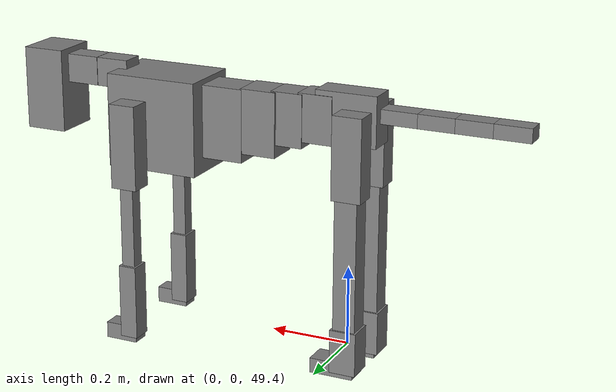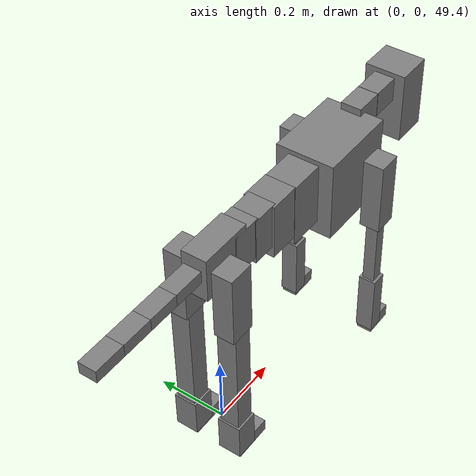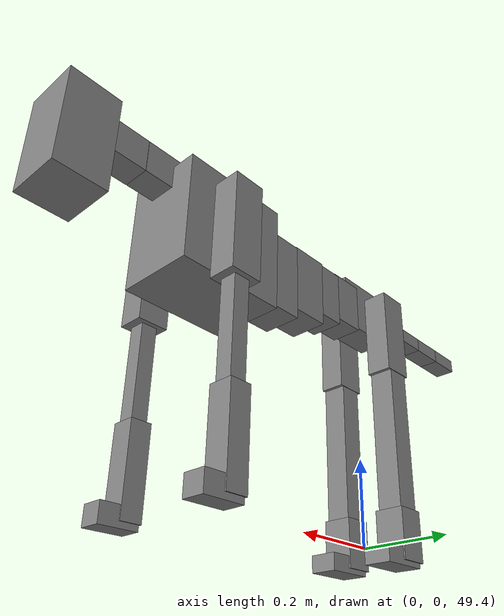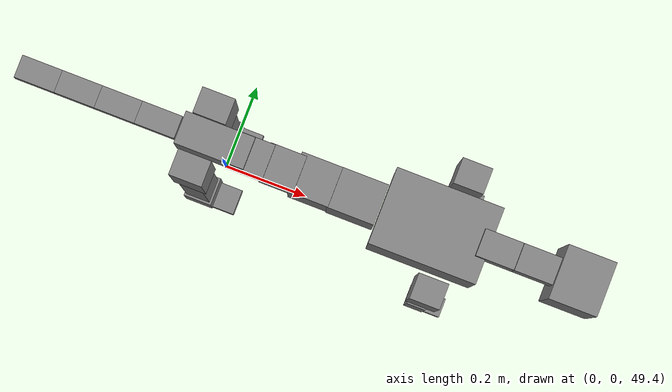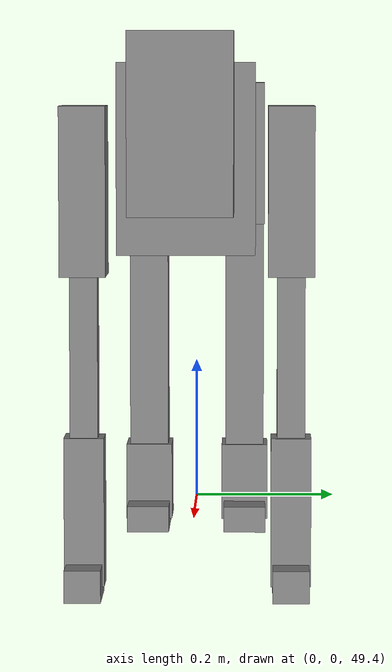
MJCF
<mujoco model="dog">

    <default>
        <joint armature="0.02" stiffness="1" damping="0.2" limited="true"/>
        <geom condim="3" friction="1 0.05 0.05" margin="0.01"/>
        <motor ctrllimited="true" ctrlrange="-1.0 1.0" forcelimited="true" gear="50"/>
    </default>

    <compiler inertiafromgeom="true" angle="radian"/>

    <option timestep="0.016" iterations="50" tolerance="1e-10" solver="Newton" jacobian="dense" cone="pyramidal"/>

    <size nconmax="20000" njmax="60000" nstack="5000000"/>
    <visual>
        <map force="0.1" zfar="30"/>
        <rgba haze="0.15 0.25 0.35 1"/>
        <quality shadowsize="2048"/>
        <global offwidth="800" offheight="800"/>
    </visual>

    <asset>
        <texture type="skybox" builtin="gradient" rgb1="0.3 0.5 0.7" rgb2="0 0 0" width="512" height="512"/>
        <texture name="texplane" type="2d" builtin="checker" rgb1=".2 .3 .4" rgb2=".1 0.15 0.2" width="512" height="512"
                 mark="cross" markrgb=".8 .8 .8"/>
        <texture name="texgeom" type="cube" builtin="flat" mark="cross" width="127" height="1278" rgb1="0.8 0.6 0.4"
                 rgb2="0.8 0.6 0.4" markrgb="1 1 1" random="0.01"/>

        <material name="matplane" reflectance="0.3" texture="texplane" texrepeat="1 1" texuniform="true"/>
        <material name="matgeom" texture="texgeom" texuniform="true" rgba="0.8 0.6 .4 1"/>
    </asset>

    <worldbody>
        <geom name="floor" pos="0 0 0" size="0 0 .25" type="plane" material="matplane" condim="3"/>

        <light directional="false" diffuse=".2 .2 .2" specular="0 0 0" pos="0 0 5" dir="0 0 -1" castshadow="false"/>
        <light mode="targetbodycom" target="torso" directional="false" diffuse=".8 .8 .8" specular="0.3 0.3 0.3"
               pos="0 0 4.0" dir="0 0 -1"/>

        <body name="root" pos="0 0 50">
            <freejoint name="root_1"/>
            <geom type="box" pos="0 0 -0.02" size="0.0774  0.0358  0.063" density="2030"/>

            <body name="spine1" pos="0.054 0 0">
                <joint name="spine1_y" axis="0 1 0" range="0 0.7" limited="true"/>
                <geom type="box" pos="0.02375 0 -0.03" size="0.04375  0.0375  0.05985" density="2030"/>

                <body name="spine2" pos="0.0612 0 0">
                    <joint name="spine2_y" axis="0 1 0" range="-0.15 0.15" limited="true"/>
                    <geom type="box" pos="0.03555  0  -0.04" size="0.04055  0.039  0.06615" density="2030"/>

                    <body name="spine3" pos="0.0730 0 0">
                        <joint name="spine3_y" axis="0 1 0" range="-0.15 0.15" limited="true"/>
                        <geom type="box" pos="0.03555  0  -0.057" size="0.04555  0.0445  0.081" density="2030"/>

                        <body name="spine4" pos="0.0780 0 0">
                            <joint name="spine4_y" axis="0 1 0" range="-0.15 0.15" limited="true"/>
                            <geom type="box" pos="0.05265  0  -0.07" size="0.05265  0.045  0.09135" density="2030"/>

                            <body name="torso" pos="0.1082 0 0">
                                <joint name="torso_y" axis="0 1 0" range="-0.15 0.15" limited="true"/>
                                <geom type="box" pos="0.11925  0  -0.085" size="0.11925  0.085  0.11745"
                                      density="2030"/>

                                <body name="neck1" pos="0.2160  0   0.0180">
                                    <joint name="neck1_y" axis="0 1 0" range="-1.2  -1" limited="true"/>
                                    <geom type="box" pos="0.0423  0  0" size="0.0423  0.03  0.036" density="2325"/>

                                    <body name="neck2" pos="0.0853  0  0">
                                        <joint name="neck2_y" axis="0 1 0" range="0.1  0" limited="true"/>
                                        <geom type="box" pos="0.0423  0  0" size="0.0423  0.03  0.036" density="2325"/>

                                        <body name="head" pos="0.0853  0  0">
                                            <joint name="head_y" axis="0 1 0" range="-0.3  -0.2" limited="true"/>
                                            <geom type="box" pos="0.0531  0  -0.055" size="0.0531  0.06  0.1044"
                                                  density="4030"/>

                                        </body>
                                    </body>
                                </body>

                                <body name="front_shoulder" pos="0.156  0   -0.0480">
                                    <joint name="front_shoulder_y" axis="0 1 0" range="-1 1.5" limited="true"/>
                                    <geom type="box" pos="0 0.13 -0.0794" size="0.0338  0.0289  0.1061" density="1158"/>
                                    <geom type="box" pos="0 -0.13 -0.0794" size="0.0338  0.0289  0.1061"
                                          density="1158"/>

                                    <body name="front_elbow" pos="0  0  -0.1588">
                                        <joint name="front_elbow_y" axis="0 1 0" range="-2 0" limited="true"/>
                                        <geom type="box" pos="0 0.13 -0.1217" size="0.0172  0.0175  0.1217"
                                              density="1081"/>
                                        <geom type="box" pos="0 -0.13 -0.1217" size="0.0172  0.0175  0.1217"
                                              density="1081"/>

                                        <body name="front_wrist" pos="0  0  -0.2433">
                                            <joint name="front_wrist_y" axis="0 1 0" range="-0.2 0" limited="true"/>
                                            <geom type="box" pos="0 0.13 -0.0810" size="0.0227  0.0252  0.0942"
                                                  density="1664"/>
                                            <geom type="box" pos="0 -0.13 -0.0810" size="0.0227  0.0252  0.0942"
                                                  density="1664"/>

                                            <body name="front_finger_end" pos="0  0  -0.1620">
                                                <joint name="front_finger_y" axis="0 1 0" range="-0.4 1"
                                                       limited="true"/>
                                                <geom type="box" pos="0.0228  0.13  -0.0054"
                                                      size="0.0417  0.0228  0.0204" density="1515"/>
                                                <geom type="box" pos="0.0228  -0.13  -0.0054"
                                                      size="0.0417  0.0228  0.0204" density="1515"/>

                                            </body>

                                        </body>
                                    </body>
                                </body>

                            </body>
                        </body>
                    </body>
                </body>
            </body>

            <body name="back_hip" pos="-0.03 0 -0.018">
                <joint name="back_hip_y" axis="0 1 0" range="-1.5 0.3" limited="true"/>
                <geom type="box" pos="0 0.07 -0.0800" size="0.0371  0.0291  0.1028" density="1154"/>
                <geom type="box" pos="0 -0.07 -0.0800" size="0.0371  0.0291  0.1028" density="1154"/>

                <body name="back_knee" pos="0  0  -0.1600">
                    <joint name="back_knee_y" axis="0 1 0" range="0 2.8" limited="true"/>
                    <geom type="box" pos="0 0.07 -0.1792" size="0.0282  0.0278  0.1948" density="1227"/>
                    <geom type="box" pos="0 -0.07 -0.1792" size="0.0282  0.0278  0.1948" density="1227"/>

                    <body name="back_ankle" pos="0  0  -0.3585">
                        <joint name="back_ankle_y" axis="0 1 0" range="-2.2 0" limited="true"/>
                        <geom type="box" pos="0 0.07 -0.0439" size="0.0333  0.0333  0.0551" density="1284"/>
                        <geom type="box" pos="0 -0.07 -0.0439" size="0.0333  0.0333  0.0551" density="1284"/>

                        <body name="back_toe_end" pos="0  0  -0.0878">
                            <joint name="back_toe_y" axis="0 1 0" range="-0.4 1" limited="true"/>
                            <geom type="box" pos="0.0301  0.07  -0.0037" size="0.0552  0.0301  0.0187" density="1515"/>
                            <geom type="box" pos="0.0301  -0.07  -0.0037" size="0.0552  0.0301  0.0187" density="1515"/>

                        </body>
                    </body>
                </body>
            </body>

            <body name="tail1" pos="-0.074 0 -0.006">
                <joint name="tail1_y" axis="0 1 0" range="-0.2 0.2" limited="true"/>
                <geom type="box" pos="-0.0536  0  0" size="0.045  0.025  0.0175" density="1587"/>

                <body name="tail2" pos="-0.09 0 0">
                    <joint name="tail2_y" axis="0 1 0" range="-0.2 0.2" limited="true"/>
                    <geom type="box" pos="-0.0536  0  0" size="0.045  0.025  0.0175" density="1587"/>

                    <body name="tail3" pos="-0.09 0 0">
                        <joint name="tail3_y" axis="0 1 0" range="-0.2 0.2" limited="true"/>
                        <geom type="box" pos="-0.0536  0  0" size="0.045  0.025  0.0175" density="1587"/>

                        <body name="tail4" pos="-0.09 0 0">
                            <joint name="tail4_y" axis="0 1 0" range="-0.2 0.2" limited="true"/>
                            <geom type="box" pos="-0.0536  0  0" size="0.045  0.025  0.0175" density="1587"/>

                        </body>
                    </body>
                </body>
            </body>
        </body>
    </worldbody>

    <actuator>
        <motor joint="spine1_y" forcerange="-150 150     "/>
        <motor joint="spine2_y" forcerange="-150 150     "/>
        <motor joint="spine3_y" forcerange="-150 150     "/>
        <motor joint="spine4_y" forcerange="-150 150     "/>
        <motor joint="torso_y" forcerange="-150 150     "/>
        <motor joint="neck1_y" forcerange="-100 100       "/>
        <motor joint="neck2_y" forcerange="-100 100       "/>
        <motor joint="head_y" forcerange="-150 150       "/>
        <motor joint="front_shoulder_y" forcerange="-144.71 147.85"/>
        <motor joint="front_elbow_y" forcerange="-100.46 127.18"/>
        <motor joint="front_wrist_y" forcerange="-108.30 93.10"/>
        <motor joint="front_finger_y" forcerange="-26.07 55.29"/>
        <motor joint="back_hip_y" forcerange="-210.11 377.98"/>
        <motor joint="back_knee_y" forcerange="-266.29 337.83"/>
        <motor joint="back_angle_y" forcerange="-225.16 207.39"/>
        <motor joint="back_toe_y" forcerange="-117.58 43.31"/>
        <motor joint="tail1_y" forcerange="-50 50     "/>
        <motor joint="tail2_y" forcerange="-50 50     "/>
        <motor joint="tail3_y" forcerange="-50 50     "/>
        <motor joint="tail4_y" forcerange="-50 50     "/>
    </actuator>
</mujoco>
